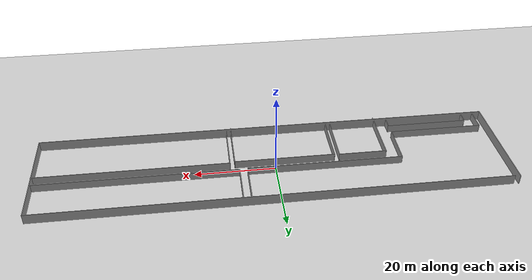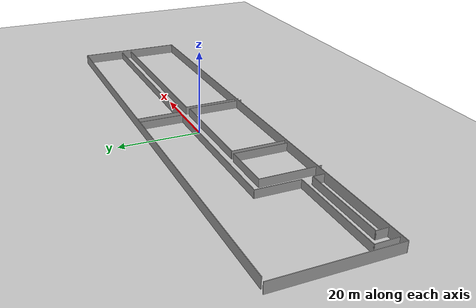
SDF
<sdf version="1.6">
 <world name="default">
  <light name="sun" type="directional">
   <pose>0 0 10 0 -0 0</pose>
   <diffuse>0.8 0.8 0.8 1</diffuse>
   <specular>0.2 0.2 0.2 1</specular>
   <attenuation>
    <range>1000</range>
    <constant>0.9</constant>
    <linear>0.01</linear>
    <quadratic>0.001</quadratic>
   </attenuation>
   <direction>-0.5 0.1 -0.9</direction>
  </light>
  <model name="ground_plane">
   <static>1</static>
   <link name="link">
    <collision name="collision">
     <geometry><plane><normal>0 0 1</normal><size>100 100</size></plane></geometry>
     <surface>
      <contact><collide_bitmask>65535</collide_bitmask></contact>
      <friction><ode><mu>100</mu><mu2>50</mu2></ode></friction>
     </surface>
    </collision>
    <visual name="visual">
     <cast_shadows>0</cast_shadows>
     <geometry><plane><normal>0 0 1</normal><size>100 100</size></plane></geometry>
     <material>
      <script><uri>file://media/materials/scripts/gazebo.material</uri><name>Gazebo/Grey</name></script>
     </material>
    </visual>
   </link>
  </model>
  <gravity>0 0 -9.8</gravity>
  <magnetic_field>6e-06 2.3e-05 -4.2e-05</magnetic_field>
  <atmosphere type="adiabatic"/>
  <physics name="default_physics" default="0" type="ode">
   <max_step_size>0.001</max_step_size>
   <real_time_factor>1</real_time_factor>
   <real_time_update_rate>1000</real_time_update_rate>
  </physics>
  <scene><ambient>0.4 0.4 0.4 1</ambient><background>0.7 0.7 0.7 1</background><shadows>1</shadows></scene>
  <audio><device>default</device></audio>
  <spherical_coordinates>
   <surface_model>EARTH_WGS84</surface_model>
   <latitude_deg>0</latitude_deg>
   <longitude_deg>0</longitude_deg>
   <elevation>0</elevation>
   <heading_deg>0</heading_deg>
  </spherical_coordinates>
  <model name="floorplan">
   <pose>0.935217 -1.47931 0 0 -0 0</pose>
   <link name="Wall_0">
    <collision name="Wall_0_Collision">
     <geometry><box><size>114.25 0.15 2.5</size></box></geometry>
     <pose>0 0 1.25 0 -0 0</pose>
    </collision>
    <visual name="Wall_0_Visual">
     <pose>0 0 1.25 0 -0 0</pose>
     <geometry><box><size>114.25 0.15 2.5</size></box></geometry>
     <material>
      <script><uri>file://media/materials/scripts/gazebo.material</uri><name>Gazebo/Grey</name></script>
      <ambient>1 1 1 1</ambient>
     </material>
     <meta><layer>0</layer></meta>
    </visual>
    <pose>0.461218 14.1797 0 0 -0 0</pose>
   </link>
   <link name="Wall_1">
    <collision name="Wall_1_Collision">
     <geometry><box><size>27.5 0.15 2.5</size></box></geometry>
     <pose>0 0 1.25 0 -0 0</pose>
    </collision>
    <visual name="Wall_1_Visual">
     <pose>0 0 1.25 0 -0 0</pose>
     <geometry><box><size>27.5 0.15 2.5</size></box></geometry>
     <material>
      <script><uri>file://media/materials/scripts/gazebo.material</uri><name>Gazebo/Grey</name></script>
      <ambient>1 1 1 1</ambient>
     </material>
     <meta><layer>0</layer></meta>
    </visual>
    <pose>57.5112 0.504686 0 0 -0 -1.5708</pose>
   </link>
   <link name="Wall_11">
    <collision name="Wall_11_Collision">
     <geometry><box><size>3 0.15 2</size></box></geometry>
     <pose>0 0 1 0 -0 0</pose>
    </collision>
    <visual name="Wall_11_Visual">
     <pose>0 0 1 0 -0 0</pose>
     <geometry><box><size>3 0.15 2</size></box></geometry>
     <material>
      <script><uri>file://media/materials/scripts/gazebo.material</uri><name>Gazebo/Grey</name></script>
      <ambient>1 1 1 1</ambient>
     </material>
     <meta><layer>0</layer></meta>
    </visual>
    <pose>-52.7012 -11.8017 0 0 -0 1.5708</pose>
   </link>
   <link name="Wall_12">
    <collision name="Wall_12_Collision">
     <geometry><box><size>20.75 0.15 2</size></box></geometry>
     <pose>0 0 1 0 -0 0</pose>
    </collision>
    <visual name="Wall_12_Visual">
     <pose>0 0 1 0 -0 0</pose>
     <geometry><box><size>20.75 0.15 2</size></box></geometry>
     <material>
      <script><uri>file://media/materials/scripts/gazebo.material</uri><name>Gazebo/Grey</name></script>
      <ambient>1 1 1 1</ambient>
     </material>
     <meta><layer>0</layer></meta>
    </visual>
    <pose>-42.4012 -10.3767 0 0 -0 0</pose>
   </link>
   <link name="Wall_13">
    <collision name="Wall_13_Collision">
     <geometry><box><size>3.25 0.15 2</size></box></geometry>
     <pose>0 0 1 0 -0 0</pose>
    </collision>
    <visual name="Wall_13_Visual">
     <pose>0 0 1 0 -0 0</pose>
     <geometry><box><size>3.25 0.15 2</size></box></geometry>
     <material>
      <script><uri>file://media/materials/scripts/gazebo.material</uri><name>Gazebo/Grey</name></script>
      <ambient>1 1 1 1</ambient>
     </material>
     <meta><layer>0</layer></meta>
    </visual>
    <pose>-32.1012 -11.9267 0 0 -0 -1.5708</pose>
   </link>
   <link name="Wall_15">
    <collision name="Wall_15_Collision">
     <geometry><box><size>14.75 0.15 2</size></box></geometry>
     <pose>0 0 1 0 -0 0</pose>
    </collision>
    <visual name="Wall_15_Visual">
     <pose>0 0 1 0 -0 0</pose>
     <geometry><box><size>14.75 0.15 2</size></box></geometry>
     <material>
      <script><uri>file://media/materials/scripts/gazebo.material</uri><name>Gazebo/Grey</name></script>
      <ambient>1 1 1 1</ambient>
     </material>
     <meta><layer>0</layer></meta>
    </visual>
    <pose>-28.8552 -7.12969 0 0 -0 1.5708</pose>
   </link>
   <link name="Wall_16">
    <collision name="Wall_16_Collision">
     <geometry><box><size>12 0.15 2</size></box></geometry>
     <pose>0 0 1 0 -0 0</pose>
    </collision>
    <visual name="Wall_16_Visual">
     <pose>0 0 1 0 -0 0</pose>
     <geometry><box><size>12 0.15 2</size></box></geometry>
     <material>
      <script><uri>file://media/materials/scripts/gazebo.material</uri><name>Gazebo/Grey</name></script>
      <ambient>1 1 1 1</ambient>
     </material>
     <meta><layer>0</layer></meta>
    </visual>
    <pose>-22.9302 0.170313 0 0 -0 0</pose>
   </link>
   <link name="Wall_17">
    <collision name="Wall_17_Collision">
     <geometry><box><size>13.25 0.15 2</size></box></geometry>
     <pose>0 0 1 0 -0 0</pose>
    </collision>
    <visual name="Wall_17_Visual">
     <pose>0 0 1 0 -0 0</pose>
     <geometry><box><size>13.25 0.15 2</size></box></geometry>
     <material>
      <script><uri>file://media/materials/scripts/gazebo.material</uri><name>Gazebo/Grey</name></script>
      <ambient>1 1 1 1</ambient>
     </material>
     <meta><layer>0</layer></meta>
    </visual>
    <pose>-17.0052 -6.37969 0 0 -0 -1.5708</pose>
   </link>
   <link name="Wall_19">
    <collision name="Wall_19_Collision">
     <geometry><box><size>13.4531 0.15 2</size></box></geometry>
     <pose>0 0 1 0 -0 0</pose>
    </collision>
    <visual name="Wall_19_Visual">
     <pose>0 0 1 0 -0 0</pose>
     <geometry><box><size>13.4531 0.15 2</size></box></geometry>
     <material>
      <script><uri>file://media/materials/scripts/gazebo.material</uri><name>Gazebo/Grey</name></script>
      <ambient>1 1 1 1</ambient>
     </material>
     <meta><layer>0</layer></meta>
    </visual>
    <pose>-15.7887 -6.64519 0 0 -0 1.57433</pose>
   </link>
   <link name="Wall_2">
    <collision name="Wall_2_Collision">
     <geometry><box><size>115.5 0.15 2.5</size></box></geometry>
     <pose>0 0 1.25 0 -0 0</pose>
    </collision>
    <visual name="Wall_2_Visual">
     <pose>0 0 1.25 0 -0 0</pose>
     <geometry><box><size>115.5 0.15 2.5</size></box></geometry>
     <material>
      <script><uri>file://media/materials/scripts/gazebo.material</uri><name>Gazebo/Grey</name></script>
      <ambient>1 1 1 1</ambient>
     </material>
     <meta><layer>0</layer></meta>
    </visual>
    <pose>-0.163782 -13.1703 0 0 -0 3.14159</pose>
   </link>
   <link name="Wall_20">
    <collision name="Wall_20_Collision">
     <geometry><box><size>24.9996 0.15 2</size></box></geometry>
     <pose>0 0 1 0 -0 0</pose>
    </collision>
    <visual name="Wall_20_Visual">
     <pose>0 0 1 0 -0 0</pose>
     <geometry><box><size>24.9996 0.15 2</size></box></geometry>
     <material>
      <script><uri>file://media/materials/scripts/gazebo.material</uri><name>Gazebo/Grey</name></script>
      <ambient>1 1 1 1</ambient>
     </material>
     <meta><layer>0</layer></meta>
    </visual>
    <pose>-3.38722 0.006313 0 0 -0 0</pose>
   </link>
   <link name="Wall_21">
    <collision name="Wall_21_Collision">
     <geometry><box><size>14.4535 0.15 2</size></box></geometry>
     <pose>0 0 1 0 -0 0</pose>
    </collision>
    <visual name="Wall_21_Visual">
     <pose>0 0 1 0 -0 0</pose>
     <geometry><box><size>14.4535 0.15 2</size></box></geometry>
     <material>
      <script><uri>file://media/materials/scripts/gazebo.material</uri><name>Gazebo/Grey</name></script>
      <ambient>1 1 1 1</ambient>
     </material>
     <meta><layer>0</layer></meta>
    </visual>
    <pose>9.06128 -7.14519 0 0 -0 -1.56751</pose>
   </link>
   <link name="Wall_23">
    <collision name="Wall_23_Collision">
     <geometry><box><size>14.5 0.15 2</size></box></geometry>
     <pose>0 0 1 0 -0 0</pose>
    </collision>
    <visual name="Wall_23_Visual">
     <pose>0 0 1 0 -0 0</pose>
     <geometry><box><size>14.5 0.15 2</size></box></geometry>
     <material>
      <script><uri>file://media/materials/scripts/gazebo.material</uri><name>Gazebo/Grey</name></script>
      <ambient>1 1 1 1</ambient>
     </material>
     <meta><layer>0</layer></meta>
    </visual>
    <pose>10.2388 -6.79169 0 0 -0 1.5708</pose>
   </link>
   <link name="Wall_24">
    <collision name="Wall_24_Collision">
     <geometry><box><size>47.75 0.15 2</size></box></geometry>
     <pose>0 0 1 0 -0 0</pose>
    </collision>
    <visual name="Wall_24_Visual">
     <pose>0 0 1 0 -0 0</pose>
     <geometry><box><size>47.75 0.15 2</size></box></geometry>
     <material>
      <script><uri>file://media/materials/scripts/gazebo.material</uri><name>Gazebo/Grey</name></script>
      <ambient>1 1 1 1</ambient>
     </material>
     <meta><layer>0</layer></meta>
    </visual>
    <pose>34.0388 0.383313 0 0 -0 0</pose>
   </link>
   <link name="Wall_26">
    <collision name="Wall_26_Collision">
     <geometry><box><size>11 0.15 2</size></box></geometry>
     <pose>0 0 1 0 -0 0</pose>
    </collision>
    <visual name="Wall_26_Visual">
     <pose>0 0 1 0 -0 0</pose>
     <geometry><box><size>11 0.15 2</size></box></geometry>
     <material>
      <script><uri>file://media/materials/scripts/gazebo.material</uri><name>Gazebo/Grey</name></script>
      <ambient>1 1 1 1</ambient>
     </material>
     <meta><layer>0</layer></meta>
    </visual>
    <pose>8.08678 8.58731 0 0 -0 -1.5708</pose>
   </link>
   <link name="Wall_27">
    <collision name="Wall_27_Collision">
     <geometry><box><size>49.75 0.15 2</size></box></geometry>
     <pose>0 0 1 0 -0 0</pose>
    </collision>
    <visual name="Wall_27_Visual">
     <pose>0 0 1 0 -0 0</pose>
     <geometry><box><size>49.75 0.15 2</size></box></geometry>
     <material>
      <script><uri>file://media/materials/scripts/gazebo.material</uri><name>Gazebo/Grey</name></script>
      <ambient>1 1 1 1</ambient>
     </material>
     <meta><layer>0</layer></meta>
    </visual>
    <pose>32.8868 3.16231 0 0 -0 0</pose>
   </link>
   <link name="Wall_3">
    <collision name="Wall_3_Collision">
     <geometry><box><size>27.75 0.15 2.5</size></box></geometry>
     <pose>0 0 1.25 0 -0 0</pose>
    </collision>
    <visual name="Wall_3_Visual">
     <pose>0 0 1.25 0 -0 0</pose>
     <geometry><box><size>27.75 0.15 2.5</size></box></geometry>
     <material>
      <script><uri>file://media/materials/scripts/gazebo.material</uri><name>Gazebo/Grey</name></script>
      <ambient>1 1 1 1</ambient>
     </material>
     <meta><layer>0</layer></meta>
    </visual>
    <pose>-57.8388 0.629686 0 0 -0 1.5708</pose>
   </link>
   <link name="Wall_5">
    <collision name="Wall_5_Collision">
     <geometry><box><size>6.0003 0.15 2</size></box></geometry>
     <pose>0 0 1 0 -0 0</pose>
    </collision>
    <visual name="Wall_5_Visual">
     <pose>0 0 1 0 -0 0</pose>
     <geometry><box><size>6.0003 0.15 2</size></box></geometry>
     <material>
      <script><uri>file://media/materials/scripts/gazebo.material</uri><name>Gazebo/Grey</name></script>
      <ambient>1 1 1 1</ambient>
     </material>
     <meta><layer>0</layer></meta>
    </visual>
    <pose>-55.8547 -10.5847 0 0 -0 1.58464</pose>
   </link>
   <link name="Wall_6">
    <collision name="Wall_6_Collision">
     <geometry><box><size>23.75 0.15 2</size></box></geometry>
     <pose>0 0 1 0 -0 0</pose>
    </collision>
    <visual name="Wall_6_Visual">
     <pose>0 0 1 0 -0 0</pose>
     <geometry><box><size>23.75 0.15 2</size></box></geometry>
     <material>
      <script><uri>file://media/materials/scripts/gazebo.material</uri><name>Gazebo/Grey</name></script>
      <ambient>1 1 1 1</ambient>
     </material>
     <meta><layer>0</layer></meta>
    </visual>
    <pose>-44.0952 -7.65969 0 0 -0 0</pose>
   </link>
   <link name="Wall_7">
    <collision name="Wall_7_Collision">
     <geometry><box><size>10.75 0.15 2</size></box></geometry>
     <pose>0 0 1 0 -0 0</pose>
    </collision>
    <visual name="Wall_7_Visual">
     <pose>0 0 1 0 -0 0</pose>
     <geometry><box><size>10.75 0.15 2</size></box></geometry>
     <material>
      <script><uri>file://media/materials/scripts/gazebo.material</uri><name>Gazebo/Grey</name></script>
      <ambient>1 1 1 1</ambient>
     </material>
     <meta><layer>0</layer></meta>
    </visual>
    <pose>-32.2547 -2.35969 0 0 -0 1.56316</pose>
   </link>
   <link name="Wall_8">
    <collision name="Wall_8_Collision">
     <geometry><box><size>38.5 0.15 2</size></box></geometry>
     <pose>0 0 1 0 -0 0</pose>
    </collision>
    <visual name="Wall_8_Visual">
     <pose>0 0 1 0 -0 0</pose>
     <geometry><box><size>38.5 0.15 2</size></box></geometry>
     <material>
      <script><uri>file://media/materials/scripts/gazebo.material</uri><name>Gazebo/Grey</name></script>
      <ambient>1 1 1 1</ambient>
     </material>
     <meta><layer>0</layer></meta>
    </visual>
    <pose>-13.0392 2.94031 0 0 -0 0</pose>
   </link>
   <link name="Wall_9">
    <collision name="Wall_9_Collision">
     <geometry><box><size>11.25 0.15 2</size></box></geometry>
     <pose>0 0 1 0 -0 0</pose>
    </collision>
    <visual name="Wall_9_Visual">
     <pose>0 0 1 0 -0 0</pose>
     <geometry><box><size>11.25 0.15 2</size></box></geometry>
     <material>
      <script><uri>file://media/materials/scripts/gazebo.material</uri><name>Gazebo/Grey</name></script>
      <ambient>1 1 1 1</ambient>
     </material>
     <meta><layer>0</layer></meta>
    </visual>
    <pose>6.13578 8.49031 0 0 -0 1.5708</pose>
   </link>
   <static>1</static>
  </model>
 </world>
</sdf>
